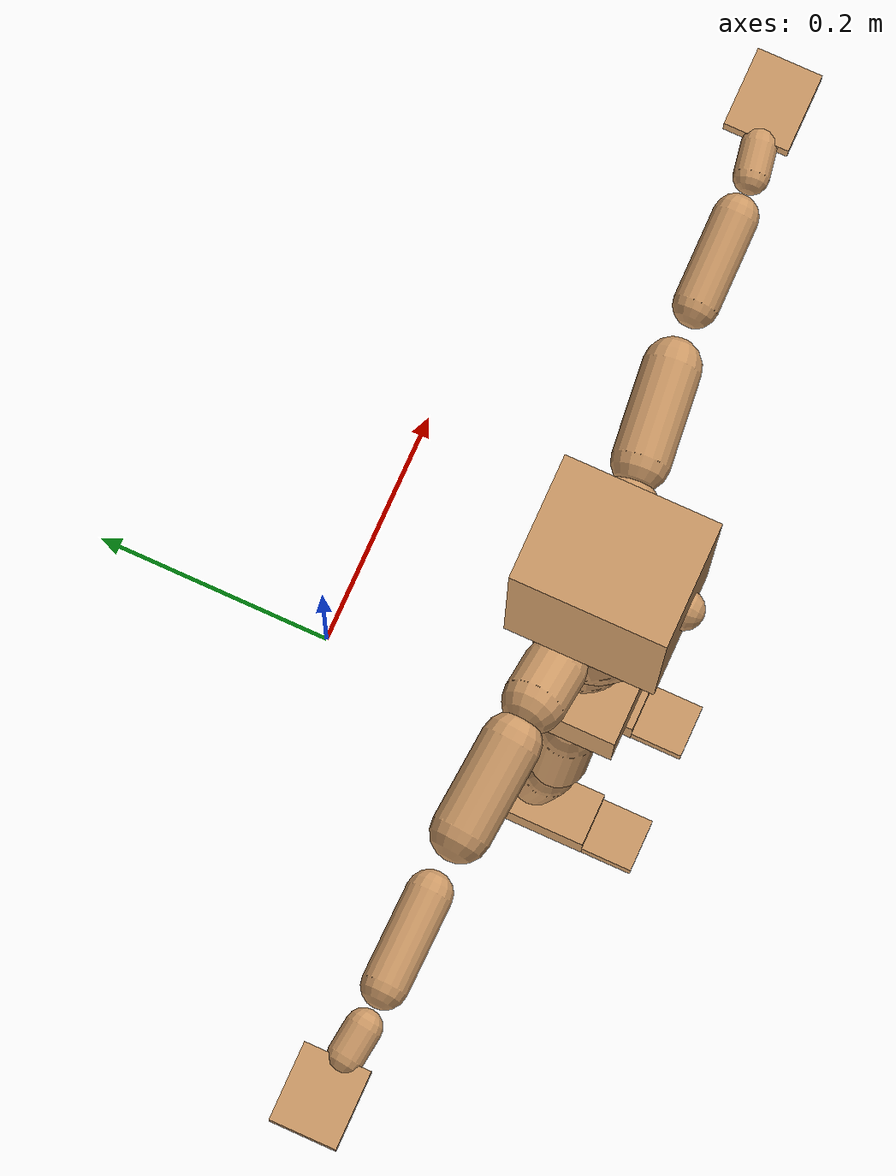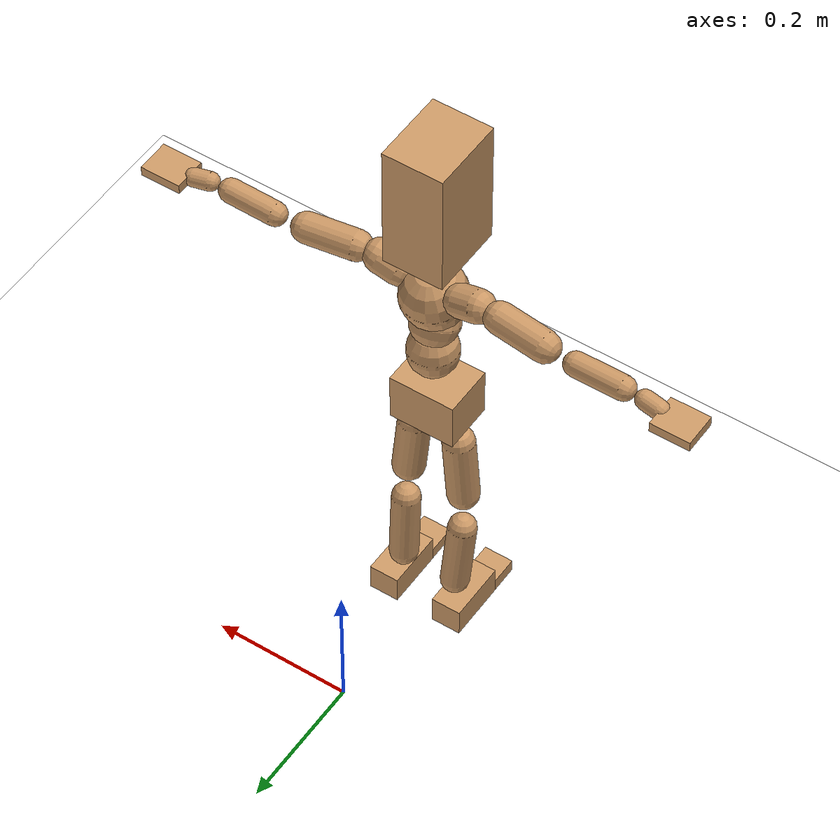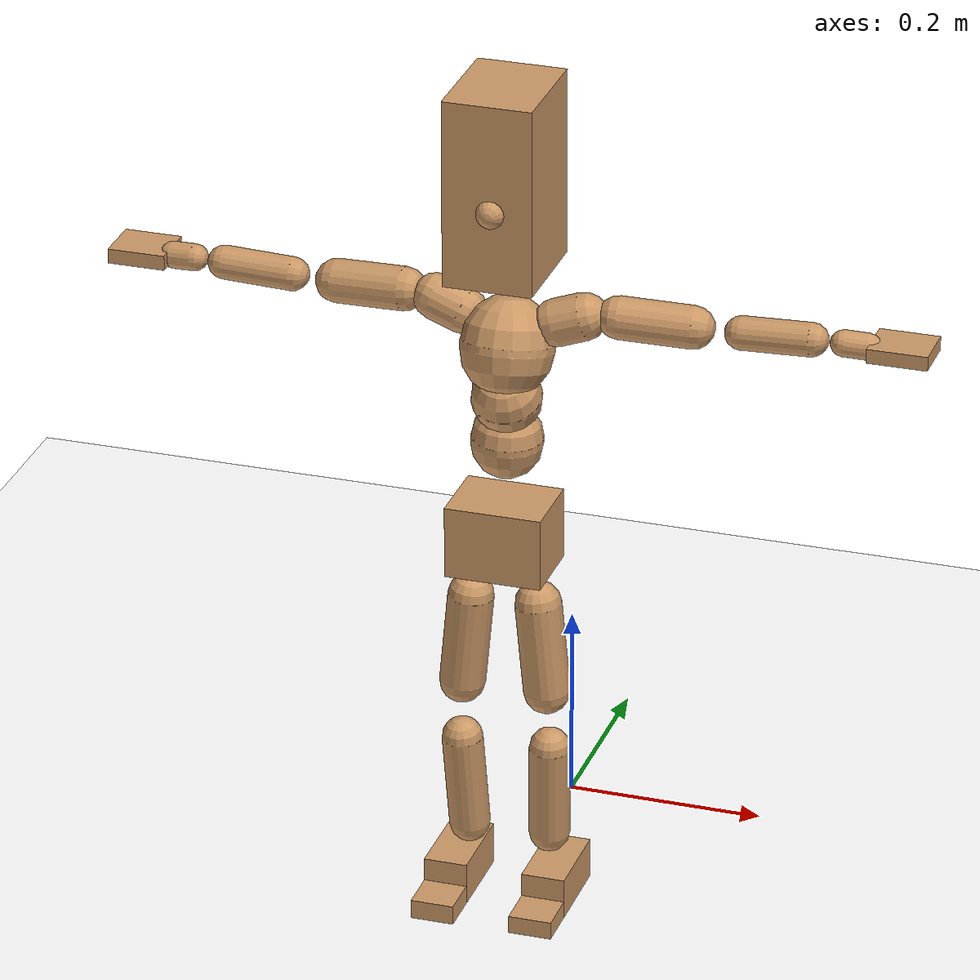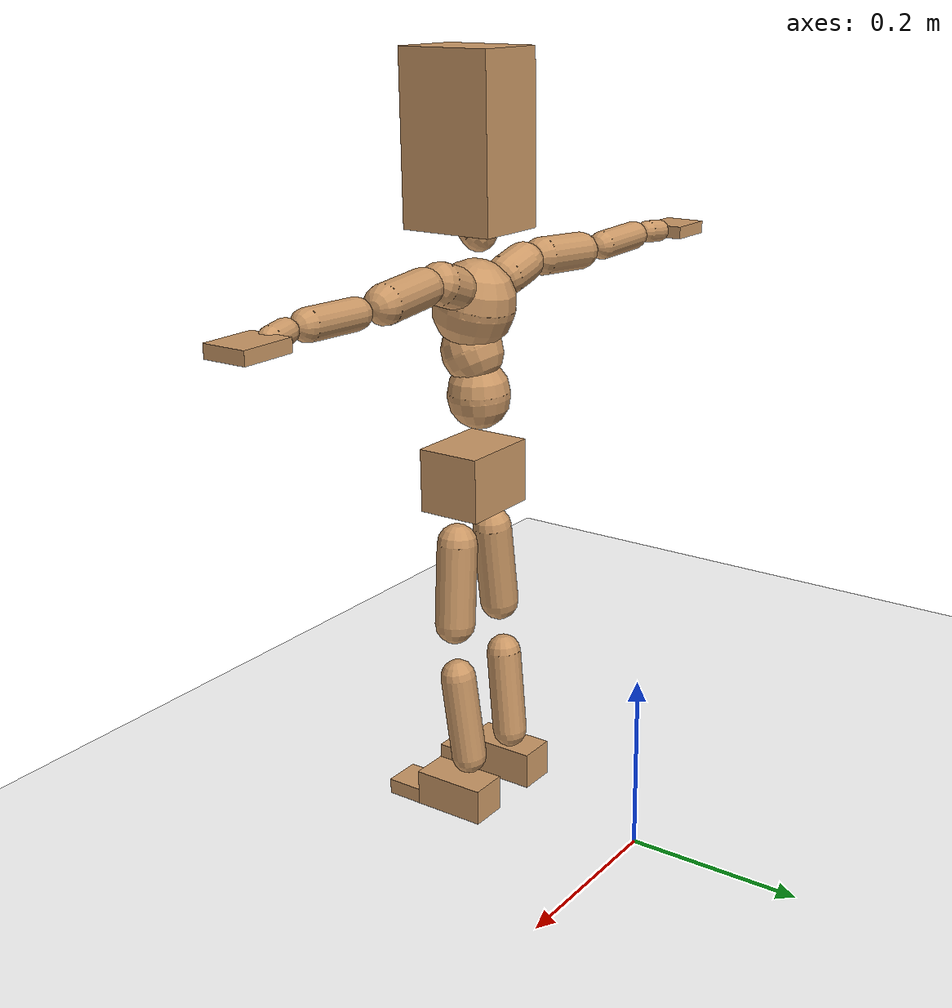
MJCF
<mujoco model="humanoid">
  <option integrator="implicitfast" />

  <visual>
    <global offwidth="1280" offheight="960" />
    <headlight active="1" ambient="0.34 0.34 0.34" diffuse="0.5 0.5 0.5" />
  </visual>

  <default>
    <joint damping="2" stiffness="2" armature="0.01" limited="true" solimplimit="0 .99 .01" />
    <geom condim="1" friction="0.7 0.005 0.0001" solimp=".99 .99 .003" solref="0.015 1" margin="0.001" rgba="0.8 0.6 .4 1" />
    <default class="smplcontact">
      <geom condim="3" friction="1. 0.005 0.0001" solref="0.015 1" solimp="0.98 0.98 0.001" priority="1" />
    </default>
    <default class="stiff_medium">
      <joint stiffness="10" />
    </default>
    <default class="stiff_medium_higher">
      <joint stiffness="50" />
    </default>
    <default class="stiff_high">
      <joint stiffness="100" />
    </default>
  </default>

  <asset>
    <texture type="skybox" builtin="gradient" rgb1="0.99 0.99 0.99" rgb2="0.608 0.828 0.892" width="100" />
    <texture builtin="flat" height="1278" mark="cross" markrgb="1 1 1" name="texgeom" random="0.01" rgb1="0.8 0.6 0.4" rgb2="0.8 0.6 0.4" type="cube" width="127" />
    <texture name="texplane" type="2d" builtin="checker" markrgb="1 1 1" rgb1="0.756 0.772 0.76" rgb2="0.6 0.6 0.6" width="100" height="100" />
    <material name="MatPlane" reflectance="0.5" texture="texplane" texrepeat="1 1" texuniform="true" />
    <material name="geom" texture="texgeom" texuniform="true" />
  </asset>

  <worldbody>
    <light name="tracking_light" pos="0 0 7" dir="0 0 -1" directional="true" cutoff="100" exponent="1" diffuse="1 1 1" specular="0.1 0.1 0.1" mode="trackcom" />
    <camera name="back" pos="0 3 2.4" xyaxes="-1 0 0 0 -1 2" mode="trackcom" />
    <camera name="side" pos="-3 0 2.4" xyaxes="0 -1 0 1 0 2" mode="trackcom" />
    <camera name="front_side" pos="-2.8 -2.8 0.8" xyaxes="0.5 -0.5 0 0.1 0.1 1" mode="trackcom" />
    <geom condim="3" name="floor" pos="0 0 0" rgba="1 1 1 1" size="100 100 .2" type="plane" material="MatPlane" />
    <body name="Pelvis" pos="-0.0018 -0.2233 0.406011" euler="90 0 0">
      <site name="Pelvis" size="0.01" />
      <freejoint name="Pelvis" />
      <geom type="box" pos="0 -0.00616858 -0.0025025" size="0.0486395 0.0368076 0.037765" quat="1.0000 0.0000 0.0000 0.0000" density="3165.830099" name="Pelvis" />
      <body name="L_Hip" pos="0.0316225 -0.0465957 -0.003094">
        <joint name="L_Hip_x" type="hinge" pos="0 0 0" axis="1 0 0" stiffness="0.2689623469387755" range="-160.0 22.92" class="stiff_medium" damping="0.27750196622649737" armature="0.00012725009799250856"/>
        <joint name="L_Hip_y" type="hinge" pos="0 0 0" axis="0 1 0" stiffness="0.28014174202127656" range="-70.0 70.0" class="stiff_medium" damping="0.18358381212568664" armature="0.00012030701255523604"/>
        <joint name="L_Hip_z" type="hinge" pos="0 0 0" axis="0 0 1" stiffness="0.2772442857142857" range="-28.65 90.0" class="stiff_medium" damping="0.18767044572180852" armature="0.00012703668934665966"/>
        <geom type="capsule" density="2040.816327" fromto="0.00291404 -0.0317103 -0.000380487 0.0115814 -0.126925 -0.00152205" size="0.0232101" name="L_Hip" />
        <body name="L_Knee" pos="0.0144955 -0.158635 -0.00190253">
          <joint name="L_Knee_x" type="hinge" pos="0 0 0" axis="1 0 0" range="-5.16 171.89" damping="0.16507450768616438" armature="0.00014651203659519309" stiffness="0.05812148979591837"/>
          <joint name="L_Knee_y" type="hinge" pos="0 0 0" axis="0 1 0" range="-4.58 6.88" damping="0.16728159012473573" armature="0.0001620222858165965" stiffness="0.05397237919621749"/>
          <joint name="L_Knee_z" type="hinge" pos="0 0 0" axis="0 0 1" range="-6.88 4.58" damping="0.17050325222125162" armature="0.000145293219830798" stiffness="0.06252734782608696"/>
          <geom type="capsule" density="1234.567901" fromto="-0.00114306 -0.0336545 -0.00368134 -0.00461002 -0.134619 -0.014801" size="0.0204173" name="L_Knee" />
          <body name="L_Ankle" pos="-0.00575308 -0.168274 -0.0184823">
            <joint name="L_Ankle_x" type="hinge" pos="0 0 0" axis="1 0 0" range="-45.84 45.84" class="stiff_medium" damping="0.22912261707219728" armature="0.00026827959844586747" stiffness="0.543557852393617"/>
            <joint name="L_Ankle_y" type="hinge" pos="0 0 0" axis="0 1 0" range="-74.48 22.92" class="stiff_medium" damping="0.11216487457166288" armature="0.0002690795799725137" stiffness="0.5195059183673469"/>
            <joint name="L_Ankle_z" type="hinge" pos="0 0 0" axis="0 0 1" range="-4.58 4.58" class="stiff_medium" damping="0.19538553593701505" armature="0.00021961124498596775" stiffness="0.4828672448979592"/>
            <geom type="box" pos="0.0106015 -0.0108745 0.0124001" size="0.0219765 0.021112 0.043554" quat="1.0000 0.0000 0.0000 0.0000" density="449.071558" name="L_Ankle" class="smplcontact" />
            <body name="L_Toe" pos="0.012012 -0.025389 0.0611293">
              <joint name="L_Toe_x" type="hinge" pos="0 0 0" axis="1 0 0" range="-91.67 22.92" armature="0.0002720532328888068" damping="0.0768284681376305" stiffness="0.10848269387755102"/>
              <joint name="L_Toe_y" type="hinge" pos="0 0 0" axis="0 1 0" range="-4.58 4.58" armature="0.00025729300601606006" damping="0.0743089644391044" stiffness="0.1073061075680272"/>
              <joint name="L_Toe_z" type="hinge" pos="0 0 0" axis="0 0 1" range="-4.58 4.58" armature="0.0002196110528466724" damping="0.0651145055320164" stiffness="0.096532"/>
              <geom type="box" pos="-0.001365 0.0025025 0.0127075" size="0.021749 0.0091 0.025415" quat="1.0000 0.0000 0.0000 0.0000" density="423.206892" name="L_Toe" class="smplcontact" />
            </body>
          </body>
        </body>
      </body>
      <body name="R_Hip" pos="-0.0308035 -0.0461369 -0.0019565">
        <joint name="R_Hip_x" type="hinge" pos="0 0 0" axis="1 0 0" stiffness="0.2689623469387755" range="-160.0 22.92" class="stiff_medium" damping="0.27750196622649737" armature="0.00012725009799250856"/>
        <joint name="R_Hip_y" type="hinge" pos="0 0 0" axis="0 1 0" stiffness="0.28014174202127656" range="-70.0 70.0" class="stiff_medium" damping="0.18358381212568664" armature="0.00012030701255523604"/>
        <joint name="R_Hip_z" type="hinge" pos="0 0 0" axis="0 0 1" stiffness="0.2772442857142857" range="-90.0 28.65" class="stiff_medium" damping="0.18767044572180852" armature="0.00012703668934665966"/>
        <geom type="capsule" density="2040.816327" fromto="-0.00325242 -0.0323445 -0.0007595 -0.0129345 -0.129419 -0.00300034" size="0.0228704" name="R_Hip" />
        <body name="R_Knee" pos="-0.016187 -0.161764 -0.00375984">
          <joint name="R_Knee_x" type="hinge" pos="0 0 0" axis="1 0 0" range="-5.16 171.89" damping="0.16507450768616438" armature="0.00014651203659519309" stiffness="0.05812148979591837"/>
          <joint name="R_Knee_y" type="hinge" pos="0 0 0" axis="0 1 0" range="-6.88 4.58" damping="0.16728159012473573" armature="0.0001620222858165965" stiffness="0.05397237919621749"/>
          <joint name="R_Knee_z" type="hinge" pos="0 0 0" axis="0 0 1" range="-4.58 6.88" damping="0.17050325222125162" armature="0.000145293219830798" stiffness="0.06252734782608696"/>
          <geom type="capsule" density="1234.567901" fromto="0.00135001 -0.0336976 -0.00359098 0.00532433 -0.134747 -0.0142878" size="0.0204173" name="R_Knee" />
          <body name="R_Ankle" pos="0.00667434 -0.168444 -0.0178788">
            <joint name="R_Ankle_x" type="hinge" pos="0 0 0" axis="1 0 0" range="-45.84 45.84" class="stiff_medium" damping="0.22912261707219728" armature="0.00026827959844586747" stiffness="0.543557852393617"/>
            <joint name="R_Ankle_y" type="hinge" pos="0 0 0" axis="0 1 0" range="-22.92 74.48" class="stiff_medium" damping="0.11216487457166288" armature="0.0002690795799725137" stiffness="0.5195059183673469"/>
            <joint name="R_Ankle_z" type="hinge" pos="0 0 0" axis="0 0 1" range="-4.58 4.58" class="stiff_medium" damping="0.19538553593701505" armature="0.00021961124498596775" stiffness="0.4828672448979592"/>
            <geom type="box" pos="-0.009646 -0.007917 0.0131174" size="0.0219765 0.021749 0.0443226" quat="1.0000 0.0000 0.0000 0.0000" density="434.700981" name="R_Ankle" class="smplcontact" />
            <body name="R_Toe" pos="-0.011557 -0.0218855 0.0631789">
              <joint name="R_Toe_x" type="hinge" pos="0 0 0" axis="1 0 0" range="-91.67 22.92" armature="0.0002720532328888068" damping="0.0768284681376305" stiffness="0.10848269387755102"/>
              <joint name="R_Toe_y" type="hinge" pos="0 0 0" axis="0 1 0" range="-4.58 4.58" armature="0.00025729300601606006" damping="0.0743089644391044" stiffness="0.1073061075680272"/>
              <joint name="R_Toe_z" type="hinge" pos="0 0 0" axis="0 0 1" range="-4.58 4.58" armature="0.0002196110528466724" damping="0.0651145055320164" stiffness="0.096532"/>
              <geom type="box" pos="0.001911 0.0020475 0.0116315" size="0.0217945 0.009828 0.0252613" quat="1.0000 0.0000 0.0000 0.0000" density="407.384095" name="R_Toe" class="smplcontact" />
            </body>
          </body>
        </body>
      </body>
      <body name="Torso" pos="-0.0011375 0.0555682 -0.0121485">
        <joint name="Torso_x" type="hinge" pos="0 0 0" axis="1 0 0" range="-25.78 57.3" class="stiff_medium" damping="1.3218138254966907" armature="0.0007196344646632899" stiffness="1.0790612765957446"/>
        <joint name="Torso_y" type="hinge" pos="0 0 0" axis="0 1 0" range="-57.3 57.3" class="stiff_high" damping="0.9299544448180508" armature="0.0001930037760203826" stiffness="11.2020511627907"/>
        <joint name="Torso_z" type="hinge" pos="0 0 0" axis="0 0 1" range="-34.38 34.38" class="stiff_high" damping="1.4963021023621588" armature="0.0005422677997601586" stiffness="10.322021621621621"/>
        <geom type="capsule" density="2040.816327" fromto="0.0012785 0.031428 0.000255699 0.00153695 0.0384062 0.000307389" size="0.0354817" name="Torso" />
        <body name="Spine" pos="0.00281565 0.0698859 0.00056313">
          <joint name="Spine_x" type="hinge" pos="0 0 0" axis="1 0 0" stiffness="1.1789270833333332" range="-25.78 57.3" class="stiff_medium" damping="1.5797528568717232" armature="0.0009408249714037292"/>
          <joint name="Spine_y" type="hinge" pos="0 0 0" axis="0 1 0" stiffness="1.3729453333333332" range="-57.3 57.3" class="stiff_high" damping="0.4115408441613138" armature="0.00019274923760280072"/>
          <joint name="Spine_z" type="hinge" pos="0 0 0" axis="0 0 1" stiffness="2.485574358974359" range="-34.38 34.38" class="stiff_high" damping="0.9780879178297119" armature="0.0005345600904577764"/>
          <geom type="capsule" density="2040.816327" fromto="0.000347793 0.0122964 0.00590509 0.000399483 0.015036 0.00724903" size="0.0348357" name="Spine" />
          <body name="Chest" pos="0.000747275 0.0273323 0.0131541">
            <joint name="Chest_x" type="hinge" pos="0 0 0" axis="1 0 0" stiffness="1.390316285714286" range="-25.78 57.3" class="stiff_medium" damping="1.8267561657367994" armature="0.0010667558560742197"/>
            <joint name="Chest_y" type="hinge" pos="0 0 0" axis="0 1 0" stiffness="1.326346315789474" range="-57.3 57.3" class="stiff_high" damping="0.40443639324459846" armature="0.00019269193949561934"/>
            <joint name="Chest_z" type="hinge" pos="0 0 0" axis="0 0 1" stiffness="2.909224324324324" range="-34.38 34.38" class="stiff_high" damping="1.0370522007598135" armature="0.000513442161898523"/>
            <geom type="capsule" density="2040.816327" fromto="-0.0004403 0.0352485 -0.00895878 -0.00049199 0.0430537 -0.0109747" size="0.0462323" name="Chest" />
            <body name="Neck" pos="-0.00136944 0.110399 -0.0228175">
              <joint name="Neck_x" type="hinge" pos="0 0 0" axis="1 0 0" range="-28.65 57.3" class="stiff_medium_higher" damping="2.3195088804631365" armature="0.0021385443220862817" stiffness="12.578933695652172"/>
              <joint name="Neck_y" type="hinge" pos="0 0 0" axis="0 1 0" range="-40.11 40.11" class="stiff_medium_higher" damping="2.0454838055506084" armature="0.0017791089396944327" stiffness="11.758706578947368"/>
              <joint name="Neck_z" type="hinge" pos="0 0 0" axis="0 0 1" range="-40.11 40.11" class="stiff_medium_higher" damping="2.5549972935675354" armature="0.0022094021849842476" stiffness="14.773252272727275"/>
              <geom type="capsule" density="1000" fromto="0.0005143 0.006662 0.00527652 0.00210274 0.0266456 0.0210584" size="0.0199383" name="Neck" />
              <body name="Head" pos="0.00266258 0.0333052 0.0262873">
                <joint name="Head_x" type="hinge" pos="0 0 0" axis="1 0 0" range="-28.65 57.3" class="stiff_medium_higher" damping="0.6414214957474753" armature="0.002870922597170357" stiffness="17.913297959183673"/>
                <joint name="Head_y" type="hinge" pos="0 0 0" axis="0 1 0" range="-40.11 40.11" class="stiff_medium_higher" damping="0.5687410940740505" armature="0.0023564320942098638" stiffness="17.158696875"/>
                <joint name="Head_z" type="hinge" pos="0 0 0" axis="0 0 1" range="-40.11 40.11" class="stiff_medium_higher" damping="0.6428120116347218" armature="0.002902442010783406" stiffness="17.795673469387754"/>
                <geom type="box" pos="-0.00307482 0.0718583 -0.00849236" size="0.0443653 0.0946626 0.0556396" quat="1.0000 0.0000 0.0000 0.0000" density="1018.069894" name="Head" />
                <geom type="capsule" name="nose" size="0.014642 0.007321" pos="0 0.057421 0.036605" quat="1 0 0 0" mass="0" contype="0" conaffinity="0" />
              </body>
            </body>
            <body name="L_Thorax" pos="0.0363135 0.0629151 -0.0174804">
              <joint name="L_Thorax_x" type="hinge" pos="0 0 0" axis="1 0 0" range="-10.89 4.58" class="stiff_medium_higher" damping="0.49553429825990786" armature="0.00016957799823169519" stiffness="1.8100390625"/>
              <joint name="L_Thorax_y" type="hinge" pos="0 0 0" axis="0 1 0" range="-28.65 17.19" class="stiff_medium_higher" damping="0.5130149198663848" armature="0.0001746286792285015" stiffness="1.8838852040816325"/>
              <joint name="L_Thorax_z" type="hinge" pos="0 0 0" axis="0 0 1" range="-31.51 40.11" class="stiff_medium_higher" damping="0.5116766766941745" armature="0.00017474124310665694" stiffness="1.872862244897959"/>
              <geom type="capsule" density="1000" fromto="0.00915112 0.00306713 -0.000903255 0.036604 0.0122684 -0.0035681" size="0.0233825" name="L_Thorax" />
              <body name="L_Shoulder" pos="0.0457551 0.0153355 -0.00447135">
                <joint name="L_Shoulder_x" type="hinge" pos="0 0 0" axis="1 0 0" range="-97.4 97.4" class="stiff_medium" damping="0.13722312481547083" armature="0.00014454777380297528" stiffness="0.3618601020408163"/>
                <joint name="L_Shoulder_y" type="hinge" pos="0 0 0" axis="0 1 0" range="-108.86 80.21" class="stiff_medium" damping="0.14739624189716116" armature="0.00016961237148824633" stiffness="0.355805612244898"/>
                <joint name="L_Shoulder_z" type="hinge" pos="0 0 0" axis="0 0 1" range="-97.4 85.94" class="stiff_medium" damping="0.14748296153675872" armature="0.0001695864886243185" stiffness="0.35627877551020415"/>
                <geom type="capsule" density="1000" fromto="0.0238482 -0.00119134 -0.00252709 0.0954383 -0.00468354 -0.0101088" size="0.0212022" name="L_Shoulder" />
                <body name="L_Elbow" pos="0.119287 -0.00587487 -0.0126359">
                  <joint name="L_Elbow_x" type="hinge" pos="0 0 0" axis="1 0 0" range="-17.19 4.58" damping="0.1169075274034786" armature="0.0001463281870485264" stiffness="0.07472173469387755"/>
                  <joint name="L_Elbow_y" type="hinge" pos="0 0 0" axis="0 1 0" range="-180.0 17.19" damping="0.129746977764914" armature="0.00018022375776955858" stiffness="0.07472612244897958"/>
                  <joint name="L_Elbow_z" type="hinge" pos="0 0 0" axis="0 0 1" range="-100.84 4.58" damping="0.129837150561672" armature="0.00018010239944548119" stiffness="0.07488044897959184"/>
                  <geom type="capsule" density="1000" fromto="0.0228831 0.000826981 -9.35312e-05 0.0916243 0.00330828 -0.000415181" size="0.0166091" name="L_Elbow" />
                  <body name="L_Wrist" pos="0.114507 0.00413526 -0.000549723">
                    <joint name="L_Wrist_x" type="hinge" pos="0 0 0" axis="1 0 0" range="-180.0 22.92" armature="0.00018218923768501704" damping="0.05729055290101398" stiffness="0.09007687537993922"/>
                    <joint name="L_Wrist_y" type="hinge" pos="0 0 0" axis="0 1 0" range="-17.19 17.19" armature="0.000221359773758312" damping="0.06246998981196738" stiffness="0.0881483469387755"/>
                    <joint name="L_Wrist_z" type="hinge" pos="0 0 0" axis="0 0 1" range="-22.92 22.92" armature="0.00022167086424202407" damping="0.06276904178991966" stiffness="0.08886942857142857"/>
                    <geom type="capsule" density="1000" fromto="0.00771945 -0.000736832 -0.00137847 0.0308782 -0.00298838 -0.00551397" size="0.0130412" name="L_Wrist" class="smplcontact" />
                    <body name="L_Hand" pos="0.0385973 -0.00376619 -0.00685137">
                      <joint name="L_Hand_x" type="hinge" pos="0 0 0" axis="1 0 0" range="-17.19 17.19" armature="0.00021849689416223735" damping="0.06809000907652916" stiffness="0.10609417021276596"/>
                      <joint name="L_Hand_y" type="hinge" pos="0 0 0" axis="0 1 0" range="-51.57 51.57" armature="0.00026130037671989455" damping="0.07484092074335816" stiffness="0.10717863265306121"/>
                      <joint name="L_Hand_z" type="hinge" pos="0 0 0" axis="0 0 1" range="-91.67 91.67" armature="0.0002728909824228654" damping="0.07662204390003875" stiffness="0.1075692857142857"/>
                      <geom type="box" pos="0.0251331 0.000455 -0.002639" size="0.0298233 0.007189 0.024479" quat="1.0000 0.0000 0.0000 0.0000" density="400.552564" name="L_Hand" class="smplcontact" />
                    </body>
                  </body>
                </body>
              </body>
            </body>
            <body name="R_Thorax" pos="-0.0377871 0.061542 -0.0195477">
              <joint name="R_Thorax_x" type="hinge" pos="0 0 0" axis="1 0 0" range="-10.89 4.58" class="stiff_medium_higher" damping="0.49553429825990786" armature="0.00016957799823169519" stiffness="1.8100390625"/>
              <joint name="R_Thorax_y" type="hinge" pos="0 0 0" axis="0 1 0" range="-17.19 28.65" class="stiff_medium_higher" damping="0.5130149198663848" armature="0.0001746286792285015" stiffness="1.8838852040816325"/>
              <joint name="R_Thorax_z" type="hinge" pos="0 0 0" axis="0 0 1" range="-40.11 31.51" class="stiff_medium_higher" damping="0.5116766766941745" armature="0.00017474124310665694" stiffness="1.872862244897959"/>
              <geom type="capsule" density="1000" fromto="-0.00965361 0.00326815 -0.000906825 -0.0386149 0.0130727 -0.00367223" size="0.0229337" name="R_Thorax" />
              <body name="R_Shoulder" pos="-0.0482701 0.0163863 -0.00457921">
                <joint name="R_Shoulder_x" type="hinge" pos="0 0 0" axis="1 0 0" range="-97.4 97.4" class="stiff_medium" damping="0.13722312481547083" armature="0.00014454777380297528" stiffness="0.3618601020408163"/>
                <joint name="R_Shoulder_y" type="hinge" pos="0 0 0" axis="0 1 0" range="-80.21 108.86" class="stiff_medium" damping="0.14739624189716116" armature="0.00016961237148824633" stiffness="0.355805612244898"/>
                <joint name="R_Shoulder_z" type="hinge" pos="0 0 0" axis="0 0 1" range="-85.94 97.4" class="stiff_medium" damping="0.14748296153675872" armature="0.0001695864886243185" stiffness="0.35627877551020415"/>
                <geom type="capsule" density="1000" fromto="-0.0232969 -0.00123884 -0.00197395 -0.0932788 -0.00491484 -0.00785555" size="0.0217763" name="R_Shoulder" />
                <body name="R_Elbow" pos="-0.116575 -0.00611266 -0.00982947">
                  <joint name="R_Elbow_x" type="hinge" pos="0 0 0" axis="1 0 0" range="-17.19 4.58" damping="0.1169075274034786" armature="0.0001463281870485264" stiffness="0.07472173469387755"/>
                  <joint name="R_Elbow_y" type="hinge" pos="0 0 0" axis="0 1 0" range="-17.19 180.0" damping="0.129746977764914" armature="0.00018022375776955858" stiffness="0.07472612244897958"/>
                  <joint name="R_Elbow_z" type="hinge" pos="0 0 0" axis="0 0 1" range="-4.58 100.84" damping="0.129837150561672" armature="0.00018010239944548119" stiffness="0.07488044897959184"/>
                  <geom type="capsule" density="1000" fromto="-0.0234805 0.000732008 -0.000505523 -0.09383 0.00284571 -0.00202187" size="0.0167321" name="R_Elbow" />
                  <body name="R_Wrist" pos="-0.117311 0.00357772 -0.00256841">
                    <joint name="R_Wrist_x" type="hinge" pos="0 0 0" axis="1 0 0" range="-180.0 22.92" armature="0.00018218923768501704" damping="0.05729055290101398" stiffness="0.09007687537993922"/>
                    <joint name="R_Wrist_y" type="hinge" pos="0 0 0" axis="0 1 0" range="-17.19 17.19" armature="0.000221359773758312" damping="0.06246998981196738" stiffness="0.0881483469387755"/>
                    <joint name="R_Wrist_z" type="hinge" pos="0 0 0" axis="0 0 1" range="-22.92 22.92" armature="0.00022167086424202407" damping="0.06276904178991966" stiffness="0.08886942857142857"/>
                    <geom type="capsule" density="1000" fromto="-0.00776566 -0.000552935 -0.000963116 -0.0311083 -0.00225308 -0.00381202" size="0.0133693" name="R_Wrist" class="smplcontact" />
                    <body name="R_Hand" pos="-0.0388733 -0.00280598 -0.00473405">
                      <joint name="R_Hand_x" type="hinge" pos="0 0 0" axis="1 0 0" range="-17.19 17.19" armature="0.00021849689416223735" damping="0.06809000907652916" stiffness="0.10609417021276596"/>
                      <joint name="R_Hand_y" type="hinge" pos="0 0 0" axis="0 1 0" range="-51.57 51.57" armature="0.00026130037671989455" damping="0.07484092074335816" stiffness="0.10717863265306121"/>
                      <joint name="R_Hand_z" type="hinge" pos="0 0 0" axis="0 0 1" range="-91.67 91.67" armature="0.0002728909824228654" damping="0.07662204390003875" stiffness="0.1075692857142857"/>
                      <geom type="box" pos="-0.0235528 -0.0004095 -0.0035945" size="0.0290076 0.007462 0.024843" quat="1.0000 0.0000 0.0000 0.0000" density="403.679611" name="R_Hand" class="smplcontact" />
                    </body>
                  </body>
                </body>
              </body>
            </body>
          </body>
        </body>
      </body>
    </body>
  </worldbody>
  <actuator>
    <general name="L_Hip_x" joint="L_Hip_x" biastype="affine" gainprm="7.728096838568465" biasprm="-5.791425293193555 -4.841322244897959 -0.037000262163532985" ctrllimited="true" ctrlrange="-1 1" forcerange="-9.682644489795917 9.682644489795917" />
    <general name="L_Hip_y" joint="L_Hip_y" biastype="affine" gainprm="6.160638670885227" biasprm="0.0 -5.042551356382979 -0.03671676242513733" ctrllimited="true" ctrlrange="-1 1" forcerange="-10.085102712765957 10.085102712765957" />
    <general name="L_Hip_z" joint="L_Hip_z" biastype="affine" gainprm="5.16713993623914" biasprm="2.671757565008607 -4.990397142857144 -0.0375340891443617" ctrllimited="true" ctrlrange="-1 1" forcerange="-9.980794285714287 9.980794285714287" />
    <general name="L_Knee_x" joint="L_Knee_x" biastype="affine" gainprm="8.082068932682876" biasprm="7.610976295657814 -5.230934081632653 -0.041268626921541096" ctrllimited="true" ctrlrange="-1 1" forcerange="-10.461868163265306 10.461868163265306" />
    <general name="L_Knee_y" joint="L_Knee_y" biastype="affine" gainprm="0.4857871938915524" biasprm="0.09749655723826968 -4.857514127659574 -0.04182039753118393" ctrllimited="true" ctrlrange="-1 1" forcerange="-9.715028255319147 9.715028255319147" />
    <general name="L_Knee_z" joint="L_Knee_z" biastype="affine" gainprm="0.5627875830985156" biasprm="-0.1129503875328609 -5.627461304347826 -0.042625813055312906" ctrllimited="true" ctrlrange="-1 1" forcerange="-11.254922608695653 11.254922608695653" />
    <general name="L_Ankle_x" joint="L_Ankle_x" biastype="affine" gainprm="3.9139048196788684" biasprm="0.0 -4.892020671542553 -0.07637420569073243" ctrllimited="true" ctrlrange="-1 1" forcerange="-9.784041343085105 9.784041343085105" />
    <general name="L_Ankle_y" joint="L_Ankle_y" biastype="affine" gainprm="3.974105003116638" biasprm="-2.1037459338880273 -4.675553265306123 -0.07477658304777525" ctrllimited="true" ctrlrange="-1 1" forcerange="-9.351106530612245 9.351106530612245" />
    <general name="L_Ankle_z" joint="L_Ankle_z" biastype="affine" gainprm="0.34738663133380093" biasprm="0.0 -4.345805204081632 -0.06512851197900502" ctrllimited="true" ctrlrange="-1 1" forcerange="-8.691610408163264 8.691610408163264" />
    <general name="L_Toe_x" joint="L_Toe_x" biastype="affine" gainprm="3.905323846665243" biasprm="-2.343057984625495 -3.905376979591837 -0.0307313872550522" ctrllimited="true" ctrlrange="-1 1" forcerange="-7.810753959183674 7.810753959183674" />
    <general name="L_Toe_y" joint="L_Toe_y" biastype="affine" gainprm="0.3087946645664638" biasprm="0.0 -3.8630198724489793 -0.02972358577564176" ctrllimited="true" ctrlrange="-1 1" forcerange="-7.7260397448979585 7.7260397448979585" />
    <general name="L_Toe_z" joint="L_Toe_z" biastype="affine" gainprm="0.2777900273852782" biasprm="0.0 -3.4751520000000005 -0.026045802212806564" ctrllimited="true" ctrlrange="-1 1" forcerange="-6.950304000000001 6.950304000000001" />
    <general name="R_Hip_x" joint="R_Hip_x" biastype="affine" gainprm="7.728096838568465" biasprm="-5.791425293193555 -4.841322244897959 -0.037000262163532985" ctrllimited="true" ctrlrange="-1 1" forcerange="-9.682644489795917 9.682644489795917" />
    <general name="R_Hip_y" joint="R_Hip_y" biastype="affine" gainprm="6.160638670885227" biasprm="0.0 -5.042551356382979 -0.03671676242513733" ctrllimited="true" ctrlrange="-1 1" forcerange="-10.085102712765957 10.085102712765957" />
    <general name="R_Hip_z" joint="R_Hip_z" biastype="affine" gainprm="5.16713993623914" biasprm="-2.671757565008607 -4.990397142857144 -0.0375340891443617" ctrllimited="true" ctrlrange="-1 1" forcerange="-9.980794285714287 9.980794285714287" />
    <general name="R_Knee_x" joint="R_Knee_x" biastype="affine" gainprm="8.082068932682876" biasprm="7.610976295657814 -5.230934081632653 -0.041268626921541096" ctrllimited="true" ctrlrange="-1 1" forcerange="-10.461868163265306 10.461868163265306" />
    <general name="R_Knee_y" joint="R_Knee_y" biastype="affine" gainprm="0.4857871938915524" biasprm="-0.09749655723826968 -4.857514127659574 -0.04182039753118393" ctrllimited="true" ctrlrange="-1 1" forcerange="-9.715028255319147 9.715028255319147" />
    <general name="R_Knee_z" joint="R_Knee_z" biastype="affine" gainprm="0.5627875830985156" biasprm="0.1129503875328609 -5.627461304347826 -0.042625813055312906" ctrllimited="true" ctrlrange="-1 1" forcerange="-11.254922608695653 11.254922608695653" />
    <general name="R_Ankle_x" joint="R_Ankle_x" biastype="affine" gainprm="3.9139048196788684" biasprm="0.0 -4.892020671542553 -0.07637420569073243" ctrllimited="true" ctrlrange="-1 1" forcerange="-9.784041343085105 9.784041343085105" />
    <general name="R_Ankle_y" joint="R_Ankle_y" biastype="affine" gainprm="3.974105003116638" biasprm="2.1037459338880273 -4.675553265306123 -0.07477658304777525" ctrllimited="true" ctrlrange="-1 1" forcerange="-9.351106530612245 9.351106530612245" />
    <general name="R_Ankle_z" joint="R_Ankle_z" biastype="affine" gainprm="0.34738663133380093" biasprm="0.0 -4.345805204081632 -0.06512851197900502" ctrllimited="true" ctrlrange="-1 1" forcerange="-8.691610408163264 8.691610408163264" />
    <general name="R_Toe_x" joint="R_Toe_x" biastype="affine" gainprm="3.905323846665243" biasprm="-2.343057984625495 -3.905376979591837 -0.0307313872550522" ctrllimited="true" ctrlrange="-1 1" forcerange="-7.810753959183674 7.810753959183674" />
    <general name="R_Toe_y" joint="R_Toe_y" biastype="affine" gainprm="0.3087946645664638" biasprm="0.0 -3.8630198724489793 -0.02972358577564176" ctrllimited="true" ctrlrange="-1 1" forcerange="-7.7260397448979585 7.7260397448979585" />
    <general name="R_Toe_z" joint="R_Toe_z" biastype="affine" gainprm="0.2777900273852782" biasprm="0.0 -3.4751520000000005 -0.026045802212806564" ctrllimited="true" ctrlrange="-1 1" forcerange="-6.950304000000001 6.950304000000001" />
    <general name="Torso_x" joint="Torso_x" biastype="affine" gainprm="18.77591926416257" biasprm="7.123459017891238 -25.897470638297868 -0.3524836867991175" ctrllimited="true" ctrlrange="-1 1" forcerange="-38.846205957446806 38.846205957446806" />
    <general name="Torso_y" joint="Torso_y" biastype="affine" gainprm="26.886903171554437" biasprm="0.0 -26.88492279069768 -0.18599088896361016" ctrllimited="true" ctrlrange="-1 1" forcerange="-40.327384186046515 40.327384186046515" />
    <general name="Torso_z" joint="Torso_z" biastype="affine" gainprm="14.864806016798797" biasprm="0.0 -24.772851891891893 -0.29926042047243173" ctrllimited="true" ctrlrange="-1 1" forcerange="-37.159277837837834 37.159277837837834" />
    <general name="Spine_x" joint="Spine_x" biastype="affine" gainprm="20.513607720995125" biasprm="7.78272647286671 -28.294249999999998 -0.4212674284991262" ctrllimited="true" ctrlrange="-1 1" forcerange="-42.441374999999994 42.441374999999994" />
    <general name="Spine_y" joint="Spine_y" biastype="affine" gainprm="32.95311519357018" biasprm="0.0 -32.950688 -0.2057704220806569" ctrllimited="true" ctrlrange="-1 1" forcerange="-49.426032 49.426032" />
    <general name="Spine_z" joint="Spine_z" biastype="affine" gainprm="17.897453638872676" biasprm="0.0 -29.826892307692308 -0.3260293059432373" ctrllimited="true" ctrlrange="-1 1" forcerange="-44.740338461538464 44.740338461538464" />
    <general name="Chest_x" joint="Chest_x" biastype="affine" gainprm="24.191829415449863" biasprm="9.178219344908275 -33.36759085714286 -0.48713497752981316" ctrllimited="true" ctrlrange="-1 1" forcerange="-50.051386285714294 50.051386285714294" />
    <general name="Chest_y" joint="Chest_y" biastype="affine" gainprm="31.834656391352755" biasprm="0.0 -31.832311578947376 -0.20221819662229923" ctrllimited="true" ctrlrange="-1 1" forcerange="-47.74846736842106 47.74846736842106" />
    <general name="Chest_z" joint="Chest_z" biastype="affine" gainprm="20.947958077247126" biasprm="0.0 -34.91069189189189 -0.34568406691993786" ctrllimited="true" ctrlrange="-1 1" forcerange="-52.36603783783783 52.36603783783783" />
    <general name="Neck_x" joint="Neck_x" biastype="affine" gainprm="6.793124549810858" biasprm="2.2643748499369525 -9.056832260869564 -0.1855607104370509" ctrllimited="true" ctrlrange="-1 1" forcerange="-18.11366452173913 18.11366452173913" />
    <general name="Neck_y" joint="Neck_y" biastype="affine" gainprm="5.926824661792065" biasprm="0.0 -8.466268736842105 -0.1636387044440487" ctrllimited="true" ctrlrange="-1 1" forcerange="-16.93253747368421 16.93253747368421" />
    <general name="Neck_z" joint="Neck_z" biastype="affine" gainprm="7.446267607496832" biasprm="0.0 -10.636741636363638 -0.20439978348540283" ctrllimited="true" ctrlrange="-1 1" forcerange="-21.273483272727276 21.273483272727276" />
    <general name="Head_x" joint="Head_x" biastype="affine" gainprm="6.449262291957639" biasprm="2.149754097319213 -8.598383020408164 -0.25656859829899015" ctrllimited="true" ctrlrange="-1 1" forcerange="-17.19676604081633 17.19676604081633" />
    <general name="Head_y" joint="Head_y" biastype="affine" gainprm="5.765746831659226" biasprm="0.0 -8.2361745 -0.2274964376296202" ctrllimited="true" ctrlrange="-1 1" forcerange="-16.472349 16.472349" />
    <general name="Head_z" joint="Head_z" biastype="affine" gainprm="5.979786732689431" biasprm="0.0 -8.541923265306123 -0.2571248046538887" ctrllimited="true" ctrlrange="-1 1" forcerange="-17.083846530612245 17.083846530612245" />
    <general name="L_Thorax_x" joint="L_Thorax_x" biastype="affine" gainprm="0.5864579457999654" biasprm="-0.23920812139610748 -4.34409375 -0.03964274386079263" ctrllimited="true" ctrlrange="-1 1" forcerange="-8.6881875 8.6881875" />
    <general name="L_Thorax_y" joint="L_Thorax_y" biastype="affine" gainprm="1.808663014741966" biasprm="-0.4521657536854915 -4.521324489795918 -0.04104119358931079" ctrllimited="true" ctrlrange="-1 1" forcerange="-9.042648979591837 9.042648979591837" />
    <general name="L_Thorax_z" joint="L_Thorax_z" biastype="affine" gainprm="2.8093041781333645" biasprm="0.3373361621327413 -4.494869387755101 -0.04093413413553396" ctrllimited="true" ctrlrange="-1 1" forcerange="-8.989738775510203 8.989738775510203" />
    <general name="L_Shoulder_x" joint="L_Shoulder_x" biastype="affine" gainprm="2.952692787214709" biasprm="0.0 -1.7369284897959183 -0.036592833284125555" ctrllimited="true" ctrlrange="-1 1" forcerange="-3.4738569795918366 3.4738569795918366" />
    <general name="L_Shoulder_y" joint="L_Shoulder_y" biastype="affine" gainprm="2.8178899463315323" biasprm="-0.4269981856582134 -1.7078669387755103 -0.039305664505909645" ctrllimited="true" ctrlrange="-1 1" forcerange="-3.4157338775510206 3.4157338775510206" />
    <general name="L_Shoulder_z" joint="L_Shoulder_z" biastype="affine" gainprm="2.736124074358795" biasprm="-0.17102640936048794 -1.7101381224489798 -0.03932878974313566" ctrllimited="true" ctrlrange="-1 1" forcerange="-3.4202762448979596 3.4202762448979596" />
    <general name="L_Elbow_x" joint="L_Elbow_x" biastype="affine" gainprm="0.5110404152972081" biasprm="-0.29601376375276967 -2.689982448979592 -0.018705204384556577" ctrllimited="true" ctrlrange="-1 1" forcerange="-5.379964897959184 5.379964897959184" />
    <general name="L_Elbow_y" joint="L_Elbow_y" biastype="affine" gainprm="4.629213456853244" biasprm="-3.8221118865575168 -2.690140408163265 -0.02075951644238624" ctrllimited="true" ctrlrange="-1 1" forcerange="-5.38028081632653 5.38028081632653" />
    <general name="L_Elbow_z" joint="L_Elbow_z" biastype="affine" gainprm="2.479940860797101" biasprm="-2.264457477331901 -2.695696163265306 -0.02077394408986752" ctrllimited="true" ctrlrange="-1 1" forcerange="-5.391392326530612 5.391392326530612" />
    <general name="L_Wrist_x" joint="L_Wrist_x" biastype="affine" gainprm="0.9570547625374622" biasprm="-0.7408543371741798 -0.5404612522796353 -0.022916221160405592" ctrllimited="true" ctrlrange="-1 1" forcerange="-1.0809225045592705 1.0809225045592705" />
    <general name="L_Wrist_y" joint="L_Wrist_y" biastype="affine" gainprm="0.1586787121238035" biasprm="0.0 -0.528890081632653 -0.024987995924786954" ctrllimited="true" ctrlrange="-1 1" forcerange="-1.057780163265306 1.057780163265306" />
    <general name="L_Wrist_z" joint="L_Wrist_z" biastype="affine" gainprm="0.2133023395615443" biasprm="0.0 -0.5332165714285715 -0.025107616715967864" ctrllimited="true" ctrlrange="-1 1" forcerange="-1.066433142857143 1.066433142857143" />
    <general name="L_Hand_x" joint="L_Hand_x" biastype="affine" gainprm="0.19098357346279188" biasprm="0.0 -0.6365650212765958 -0.02723600363061167" ctrllimited="true" ctrlrange="-1 1" forcerange="-1.2731300425531915 1.2731300425531915" />
    <general name="L_Hand_y" joint="L_Hand_y" biastype="affine" gainprm="0.5788072489342441" biasprm="0.0 -0.6430717959183673 -0.029936368297343266" ctrllimited="true" ctrlrange="-1 1" forcerange="-1.2861435918367345 1.2861435918367345" />
    <general name="L_Hand_z" joint="L_Hand_z" biastype="affine" gainprm="1.0326285641172268" biasprm="0.0 -0.6454157142857142 -0.0306488175600155" ctrllimited="true" ctrlrange="-1 1" forcerange="-1.2908314285714284 1.2908314285714284" />
    <general name="R_Thorax_x" joint="R_Thorax_x" biastype="affine" gainprm="0.5864579457999654" biasprm="-0.23920812139610748 -4.34409375 -0.03964274386079263" ctrllimited="true" ctrlrange="-1 1" forcerange="-8.6881875 8.6881875" />
    <general name="R_Thorax_y" joint="R_Thorax_y" biastype="affine" gainprm="1.808663014741966" biasprm="0.4521657536854912 -4.521324489795918 -0.04104119358931079" ctrllimited="true" ctrlrange="-1 1" forcerange="-9.042648979591837 9.042648979591837" />
    <general name="R_Thorax_z" joint="R_Thorax_z" biastype="affine" gainprm="2.8093041781333645" biasprm="-0.3373361621327413 -4.494869387755101 -0.04093413413553396" ctrllimited="true" ctrlrange="-1 1" forcerange="-8.989738775510203 8.989738775510203" />
    <general name="R_Shoulder_x" joint="R_Shoulder_x" biastype="affine" gainprm="2.952692787214709" biasprm="0.0 -1.7369284897959183 -0.036592833284125555" ctrllimited="true" ctrlrange="-1 1" forcerange="-3.4738569795918366 3.4738569795918366" />
    <general name="R_Shoulder_y" joint="R_Shoulder_y" biastype="affine" gainprm="2.8178899463315323" biasprm="0.4269981856582134 -1.7078669387755103 -0.039305664505909645" ctrllimited="true" ctrlrange="-1 1" forcerange="-3.4157338775510206 3.4157338775510206" />
    <general name="R_Shoulder_z" joint="R_Shoulder_z" biastype="affine" gainprm="2.736124074358795" biasprm="0.17102640936048755 -1.7101381224489798 -0.03932878974313566" ctrllimited="true" ctrlrange="-1 1" forcerange="-3.4202762448979596 3.4202762448979596" />
    <general name="R_Elbow_x" joint="R_Elbow_x" biastype="affine" gainprm="0.5110404152972081" biasprm="-0.29601376375276967 -2.689982448979592 -0.018705204384556577" ctrllimited="true" ctrlrange="-1 1" forcerange="-5.379964897959184 5.379964897959184" />
    <general name="R_Elbow_y" joint="R_Elbow_y" biastype="affine" gainprm="4.629213456853244" biasprm="3.8221118865575168 -2.690140408163265 -0.02075951644238624" ctrllimited="true" ctrlrange="-1 1" forcerange="-5.38028081632653 5.38028081632653" />
    <general name="R_Elbow_z" joint="R_Elbow_z" biastype="affine" gainprm="2.479940860797101" biasprm="2.2644574773319004 -2.695696163265306 -0.02077394408986752" ctrllimited="true" ctrlrange="-1 1" forcerange="-5.391392326530612 5.391392326530612" />
    <general name="R_Wrist_x" joint="R_Wrist_x" biastype="affine" gainprm="0.9570547625374622" biasprm="-0.7408543371741798 -0.5404612522796353 -0.022916221160405592" ctrllimited="true" ctrlrange="-1 1" forcerange="-1.0809225045592705 1.0809225045592705" />
    <general name="R_Wrist_y" joint="R_Wrist_y" biastype="affine" gainprm="0.1586787121238035" biasprm="0.0 -0.528890081632653 -0.024987995924786954" ctrllimited="true" ctrlrange="-1 1" forcerange="-1.057780163265306 1.057780163265306" />
    <general name="R_Wrist_z" joint="R_Wrist_z" biastype="affine" gainprm="0.2133023395615443" biasprm="0.0 -0.5332165714285715 -0.025107616715967864" ctrllimited="true" ctrlrange="-1 1" forcerange="-1.066433142857143 1.066433142857143" />
    <general name="R_Hand_x" joint="R_Hand_x" biastype="affine" gainprm="0.19098357346279188" biasprm="0.0 -0.6365650212765958 -0.02723600363061167" ctrllimited="true" ctrlrange="-1 1" forcerange="-1.2731300425531915 1.2731300425531915" />
    <general name="R_Hand_y" joint="R_Hand_y" biastype="affine" gainprm="0.5788072489342441" biasprm="0.0 -0.6430717959183673 -0.029936368297343266" ctrllimited="true" ctrlrange="-1 1" forcerange="-1.2861435918367345 1.2861435918367345" />
    <general name="R_Hand_z" joint="R_Hand_z" biastype="affine" gainprm="1.0326285641172268" biasprm="0.0 -0.6454157142857142 -0.0306488175600155" ctrllimited="true" ctrlrange="-1 1" forcerange="-1.2908314285714284 1.2908314285714284" />
  </actuator>
  <contact>
    <exclude body1="Torso" body2="Chest" />
    <exclude body1="Head" body2="Chest" />
    <exclude body1="R_Knee" body2="R_Toe" />
    <exclude body1="R_Knee" body2="L_Ankle" />
    <exclude body1="R_Knee" body2="L_Toe" />
    <exclude body1="L_Knee" body2="L_Toe" />
    <exclude body1="L_Knee" body2="R_Ankle" />
    <exclude body1="L_Knee" body2="R_Toe" />
    <exclude body1="L_Shoulder" body2="Chest" />
    <exclude body1="R_Shoulder" body2="Chest" />
  </contact>
  <sensor>
    <framelinvel name="sensor_Pelvis_framelinvel" objtype="xbody" objname="Pelvis" />
    <framelinvel name="sensor_L_Hip_framelinvel" objtype="xbody" objname="L_Hip" />
    <framelinvel name="sensor_L_Knee_framelinvel" objtype="xbody" objname="L_Knee" />
    <framelinvel name="sensor_L_Ankle_framelinvel" objtype="xbody" objname="L_Ankle" />
    <framelinvel name="sensor_L_Toe_framelinvel" objtype="xbody" objname="L_Toe" />
    <framelinvel name="sensor_R_Hip_framelinvel" objtype="xbody" objname="R_Hip" />
    <framelinvel name="sensor_R_Knee_framelinvel" objtype="xbody" objname="R_Knee" />
    <framelinvel name="sensor_R_Ankle_framelinvel" objtype="xbody" objname="R_Ankle" />
    <framelinvel name="sensor_R_Toe_framelinvel" objtype="xbody" objname="R_Toe" />
    <framelinvel name="sensor_Torso_framelinvel" objtype="xbody" objname="Torso" />
    <framelinvel name="sensor_Spine_framelinvel" objtype="xbody" objname="Spine" />
    <framelinvel name="sensor_Chest_framelinvel" objtype="xbody" objname="Chest" />
    <framelinvel name="sensor_Neck_framelinvel" objtype="xbody" objname="Neck" />
    <framelinvel name="sensor_Head_framelinvel" objtype="xbody" objname="Head" />
    <framelinvel name="sensor_L_Thorax_framelinvel" objtype="xbody" objname="L_Thorax" />
    <framelinvel name="sensor_L_Shoulder_framelinvel" objtype="xbody" objname="L_Shoulder" />
    <framelinvel name="sensor_L_Elbow_framelinvel" objtype="xbody" objname="L_Elbow" />
    <framelinvel name="sensor_L_Wrist_framelinvel" objtype="xbody" objname="L_Wrist" />
    <framelinvel name="sensor_L_Hand_framelinvel" objtype="xbody" objname="L_Hand" />
    <framelinvel name="sensor_R_Thorax_framelinvel" objtype="xbody" objname="R_Thorax" />
    <framelinvel name="sensor_R_Shoulder_framelinvel" objtype="xbody" objname="R_Shoulder" />
    <framelinvel name="sensor_R_Elbow_framelinvel" objtype="xbody" objname="R_Elbow" />
    <framelinvel name="sensor_R_Wrist_framelinvel" objtype="xbody" objname="R_Wrist" />
    <framelinvel name="sensor_R_Hand_framelinvel" objtype="xbody" objname="R_Hand" />
    <frameangvel name="sensor_Pelvis_frameangvel" objtype="xbody" objname="Pelvis" />
    <frameangvel name="sensor_L_Hip_frameangvel" objtype="xbody" objname="L_Hip" />
    <frameangvel name="sensor_L_Knee_frameangvel" objtype="xbody" objname="L_Knee" />
    <frameangvel name="sensor_L_Ankle_frameangvel" objtype="xbody" objname="L_Ankle" />
    <frameangvel name="sensor_L_Toe_frameangvel" objtype="xbody" objname="L_Toe" />
    <frameangvel name="sensor_R_Hip_frameangvel" objtype="xbody" objname="R_Hip" />
    <frameangvel name="sensor_R_Knee_frameangvel" objtype="xbody" objname="R_Knee" />
    <frameangvel name="sensor_R_Ankle_frameangvel" objtype="xbody" objname="R_Ankle" />
    <frameangvel name="sensor_R_Toe_frameangvel" objtype="xbody" objname="R_Toe" />
    <frameangvel name="sensor_Torso_frameangvel" objtype="xbody" objname="Torso" />
    <frameangvel name="sensor_Spine_frameangvel" objtype="xbody" objname="Spine" />
    <frameangvel name="sensor_Chest_frameangvel" objtype="xbody" objname="Chest" />
    <frameangvel name="sensor_Neck_frameangvel" objtype="xbody" objname="Neck" />
    <frameangvel name="sensor_Head_frameangvel" objtype="xbody" objname="Head" />
    <frameangvel name="sensor_L_Thorax_frameangvel" objtype="xbody" objname="L_Thorax" />
    <frameangvel name="sensor_L_Shoulder_frameangvel" objtype="xbody" objname="L_Shoulder" />
    <frameangvel name="sensor_L_Elbow_frameangvel" objtype="xbody" objname="L_Elbow" />
    <frameangvel name="sensor_L_Wrist_frameangvel" objtype="xbody" objname="L_Wrist" />
    <frameangvel name="sensor_L_Hand_frameangvel" objtype="xbody" objname="L_Hand" />
    <frameangvel name="sensor_R_Thorax_frameangvel" objtype="xbody" objname="R_Thorax" />
    <frameangvel name="sensor_R_Shoulder_frameangvel" objtype="xbody" objname="R_Shoulder" />
    <frameangvel name="sensor_R_Elbow_frameangvel" objtype="xbody" objname="R_Elbow" />
    <frameangvel name="sensor_R_Wrist_frameangvel" objtype="xbody" objname="R_Wrist" />
    <frameangvel name="sensor_R_Hand_frameangvel" objtype="xbody" objname="R_Hand" />
    <subtreelinvel name="Chest_subtreelinvel" body="Chest" />
    <gyro name="Pelvis_gyro" site="Pelvis" />
  </sensor>
</mujoco>
